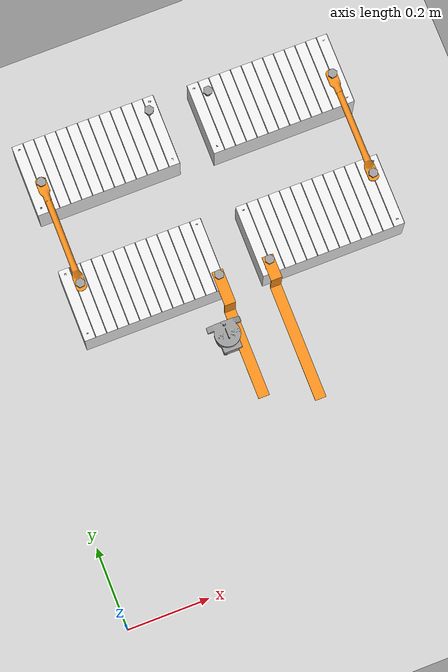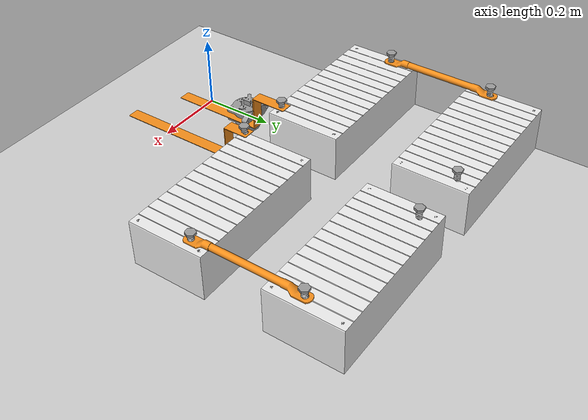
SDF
<sdf version="1.6">
 <world name="Pack6">
  <model name="ground_plane">
   <static>1</static>
   <link name="link">
    <collision name="collision">
     <geometry><plane><normal>0 0 1</normal><size>100 100</size></plane></geometry>
     <surface><friction><ode><mu>100</mu><mu2>50</mu2></ode></friction></surface>
    </collision>
    <visual name="visual">
     <cast_shadows>0</cast_shadows>
     <geometry><plane><normal>0 0 1</normal><size>100 100</size></plane></geometry>
     <material>
      <script><uri>file://media/materials/scripts/gazebo.material</uri><name>Gazebo/Grey</name></script>
     </material>
    </visual>
   </link>
  </model>
  <model name="HW_battery_module_sc_fr_half">
   <link name="link_1">
    <inertial>
     <mass>10</mass>
     <inertia><ixx>0.1275</ixx><ixy>0</ixy><ixz>0</ixz><iyy>0.3997</iyy><iyz>0</iyz><izz>0.4538</izz></inertia>
    </inertial>
    <visual name="visual">
     <geometry>
      <mesh>
       <uri>/home/wanghu26/battery_ws/src/battery_model/battery_model_stl/HW_Battery Module.stl</uri>
       <scale>0.5 0.5 0.5</scale>
      </mesh>
     </geometry>
     <material>
      <lighting>1</lighting>
      <script><uri>file://media/materials/scripts/gazebo.material</uri><name>Gazebo/White</name></script>
      <shader type="pixel"/>
     </material>
    </visual>
    <collision name="collision">
     <geometry><box><size>0.33 0.165 0.105</size></box></geometry>
     <surface>
      <friction>
       <ode><mu>1</mu><mu2>1</mu2><fdir1>0 0 0</fdir1><slip1>0</slip1><slip2>0</slip2></ode>
       <torsional>
        <coefficient>1</coefficient>
        <patch_radius>0</patch_radius>
        <surface_radius>0</surface_radius>
        <use_patch_radius>1</use_patch_radius>
        <ode><slip>0</slip></ode>
       </torsional>
      </friction>
      <bounce><restitution_coefficient>0</restitution_coefficient><threshold>1e+06</threshold></bounce>
      <contact>
       <collide_without_contact>0</collide_without_contact>
       <collide_without_contact_bitmask>1</collide_without_contact_bitmask>
       <collide_bitmask>1</collide_bitmask>
       <ode>
        <soft_cfm>0</soft_cfm>
        <soft_erp>0.2</soft_erp>
        <kp>1e+13</kp>
        <kd>1</kd>
        <max_vel>0.01</max_vel>
        <min_depth>0.0001</min_depth>
       </ode>
       <bullet>
        <split_impulse>1</split_impulse>
        <split_impulse_penetration_threshold>-0.01</split_impulse_penetration_threshold>
        <soft_cfm>0</soft_cfm>
        <soft_erp>0.2</soft_erp>
        <kp>1e+13</kp>
        <kd>1</kd>
       </bullet>
      </contact>
     </surface>
    </collision>
   </link>
   <static>1</static>
   <pose>0.299993 0.656978 0.4 0 -0 0</pose>
  </model>
  <model name="HW_battery_module_sc_fr_1_half">
   <link name="link_1">
    <inertial>
     <mass>10</mass>
     <inertia><ixx>0.1275</ixx><ixy>0</ixy><ixz>0</ixz><iyy>0.3997</iyy><iyz>0</iyz><izz>0.4538</izz></inertia>
    </inertial>
    <visual name="visual">
     <geometry>
      <mesh>
       <uri>/home/wanghu26/battery_ws/src/battery_model/battery_model_stl/HW_Battery Module.stl</uri>
       <scale>0.5 0.5 0.5</scale>
      </mesh>
     </geometry>
     <material>
      <lighting>1</lighting>
      <script><uri>file://media/materials/scripts/gazebo.material</uri><name>Gazebo/White</name></script>
      <shader type="pixel"/>
     </material>
    </visual>
    <collision name="collision">
     <geometry><box><size>0.33 0.165 0.105</size></box></geometry>
     <surface>
      <friction>
       <ode><mu>1</mu><mu2>1</mu2><fdir1>0 0 0</fdir1><slip1>0</slip1><slip2>0</slip2></ode>
       <torsional>
        <coefficient>1</coefficient>
        <patch_radius>0</patch_radius>
        <surface_radius>0</surface_radius>
        <use_patch_radius>1</use_patch_radius>
        <ode><slip>0</slip></ode>
       </torsional>
      </friction>
      <bounce><restitution_coefficient>0</restitution_coefficient><threshold>1e+06</threshold></bounce>
      <contact>
       <collide_without_contact>0</collide_without_contact>
       <collide_without_contact_bitmask>1</collide_without_contact_bitmask>
       <collide_bitmask>1</collide_bitmask>
       <ode>
        <soft_cfm>0</soft_cfm>
        <soft_erp>0.2</soft_erp>
        <kp>1e+13</kp>
        <kd>1</kd>
        <max_vel>0.01</max_vel>
        <min_depth>0.0001</min_depth>
       </ode>
       <bullet>
        <split_impulse>1</split_impulse>
        <split_impulse_penetration_threshold>-0.01</split_impulse_penetration_threshold>
        <soft_cfm>0</soft_cfm>
        <soft_erp>0.2</soft_erp>
        <kp>1e+13</kp>
        <kd>1</kd>
       </bullet>
      </contact>
     </surface>
    </collision>
   </link>
   <static>1</static>
   <pose>0.303126 0.953183 0.4 0 -0 0</pose>
  </model>
  <model name="HW_battery_module_sc_fr_2_half">
   <link name="link_1">
    <inertial>
     <mass>10</mass>
     <inertia><ixx>0.1275</ixx><ixy>0</ixy><ixz>0</ixz><iyy>0.3997</iyy><iyz>0</iyz><izz>0.4538</izz></inertia>
    </inertial>
    <visual name="visual">
     <geometry>
      <mesh>
       <uri>/home/wanghu26/battery_ws/src/battery_model/battery_model_stl/HW_Battery Module.stl</uri>
       <scale>0.5 0.5 0.5</scale>
      </mesh>
     </geometry>
     <material>
      <lighting>1</lighting>
      <script><uri>file://media/materials/scripts/gazebo.material</uri><name>Gazebo/White</name></script>
      <shader type="pixel"/>
     </material>
    </visual>
    <collision name="collision">
     <geometry><box><size>0.33 0.165 0.105</size></box></geometry>
     <surface>
      <friction>
       <ode><mu>1</mu><mu2>1</mu2><fdir1>0 0 0</fdir1><slip1>0</slip1><slip2>0</slip2></ode>
       <torsional>
        <coefficient>1</coefficient>
        <patch_radius>0</patch_radius>
        <surface_radius>0</surface_radius>
        <use_patch_radius>1</use_patch_radius>
        <ode><slip>0</slip></ode>
       </torsional>
      </friction>
      <bounce><restitution_coefficient>0</restitution_coefficient><threshold>1e+06</threshold></bounce>
      <contact>
       <collide_without_contact>0</collide_without_contact>
       <collide_without_contact_bitmask>1</collide_without_contact_bitmask>
       <collide_bitmask>1</collide_bitmask>
       <ode>
        <soft_cfm>0</soft_cfm>
        <soft_erp>0.2</soft_erp>
        <kp>1e+13</kp>
        <kd>1</kd>
        <max_vel>0.01</max_vel>
        <min_depth>0.0001</min_depth>
       </ode>
       <bullet>
        <split_impulse>1</split_impulse>
        <split_impulse_penetration_threshold>-0.01</split_impulse_penetration_threshold>
        <soft_cfm>0</soft_cfm>
        <soft_erp>0.2</soft_erp>
        <kp>1e+13</kp>
        <kd>1</kd>
       </bullet>
      </contact>
     </surface>
    </collision>
   </link>
   <static>1</static>
   <pose>0.71 0.945576 0.4 0 -0 0</pose>
  </model>
  <model name="HW_battery_module_sc_fr_3_half">
   <link name="link_1">
    <inertial>
     <mass>10</mass>
     <inertia><ixx>0.1275</ixx><ixy>0</ixy><ixz>0</ixz><iyy>0.3997</iyy><iyz>0</iyz><izz>0.4538</izz></inertia>
    </inertial>
    <visual name="visual">
     <geometry>
      <mesh>
       <uri>/home/wanghu26/battery_ws/src/battery_model/battery_model_stl/HW_Battery Module.stl</uri>
       <scale>0.5 0.5 0.5</scale>
      </mesh>
     </geometry>
     <material>
      <lighting>1</lighting>
      <script><uri>file://media/materials/scripts/gazebo.material</uri><name>Gazebo/White</name></script>
      <shader type="pixel"/>
     </material>
    </visual>
    <collision name="collision">
     <geometry><box><size>0.33 0.165 0.105</size></box></geometry>
     <surface>
      <friction>
       <ode><mu>1</mu><mu2>1</mu2><fdir1>0 0 0</fdir1><slip1>0</slip1><slip2>0</slip2></ode>
       <torsional>
        <coefficient>1</coefficient>
        <patch_radius>0</patch_radius>
        <surface_radius>0</surface_radius>
        <use_patch_radius>1</use_patch_radius>
        <ode><slip>0</slip></ode>
       </torsional>
      </friction>
      <bounce><restitution_coefficient>0</restitution_coefficient><threshold>1e+06</threshold></bounce>
      <contact>
       <collide_without_contact>0</collide_without_contact>
       <collide_without_contact_bitmask>1</collide_without_contact_bitmask>
       <collide_bitmask>1</collide_bitmask>
       <ode>
        <soft_cfm>0</soft_cfm>
        <soft_erp>0.2</soft_erp>
        <kp>1e+13</kp>
        <kd>1</kd>
        <max_vel>0.01</max_vel>
        <min_depth>0.0001</min_depth>
       </ode>
       <bullet>
        <split_impulse>1</split_impulse>
        <split_impulse_penetration_threshold>-0.01</split_impulse_penetration_threshold>
        <soft_cfm>0</soft_cfm>
        <soft_erp>0.2</soft_erp>
        <kp>1e+13</kp>
        <kd>1</kd>
       </bullet>
      </contact>
     </surface>
    </collision>
   </link>
   <static>1</static>
   <pose>0.71 0.651527 0.4 0 -0 0</pose>
  </model>
  <model name="HW_HV_cable_sc_f">
   <link name="link_1">
    <inertial>
     <mass>0.5</mass>
     <inertia><ixx>0.0017</ixx><ixy>0</ixy><ixz>0</ixz><iyy>0.00033333</iyy><iyz>0</iyz><izz>0.0017</izz></inertia>
    </inertial>
    <visual name="visual">
     <geometry>
      <mesh>
       <uri>/home/wanghu26/battery_ws/src/battery_model/battery_model_stl/HW_HV_cable .stl</uri>
       <scale>1 1 1</scale>
      </mesh>
     </geometry>
     <material>
      <lighting>1</lighting>
      <script><uri>file://media/materials/scripts/gazebo.material</uri><name>Gazebo/Orange</name></script>
      <shader type="pixel"/>
     </material>
    </visual>
    <collision name="collision">
     <pose>0.2 0 0 0 -0 0</pose>
     <geometry><box><size>0.02 0.15 0.02</size></box></geometry>
     <surface>
      <friction>
       <ode><mu>1</mu><mu2>1</mu2><fdir1>0 0 0</fdir1><slip1>0</slip1><slip2>0</slip2></ode>
       <torsional>
        <coefficient>1</coefficient>
        <patch_radius>0</patch_radius>
        <surface_radius>0</surface_radius>
        <use_patch_radius>1</use_patch_radius>
        <ode><slip>0</slip></ode>
       </torsional>
      </friction>
      <bounce><restitution_coefficient>0</restitution_coefficient><threshold>1e+06</threshold></bounce>
      <contact>
       <collide_without_contact>0</collide_without_contact>
       <collide_without_contact_bitmask>1</collide_without_contact_bitmask>
       <collide_bitmask>1</collide_bitmask>
       <ode>
        <soft_cfm>0</soft_cfm>
        <soft_erp>0.2</soft_erp>
        <kp>1e+13</kp>
        <kd>1</kd>
        <max_vel>0.01</max_vel>
        <min_depth>0</min_depth>
       </ode>
       <bullet>
        <split_impulse>1</split_impulse>
        <split_impulse_penetration_threshold>-0.01</split_impulse_penetration_threshold>
        <soft_cfm>0</soft_cfm>
        <soft_erp>0.2</soft_erp>
        <kp>1e+13</kp>
        <kd>1</kd>
       </bullet>
      </contact>
     </surface>
    </collision>
   </link>
   <static>1</static>
   <plugin name="groun_truth" filename="libgazebo_ros_p3d.so">
    <frameName>map</frameName>
    <bodyName>link_1</bodyName>
    <topicName>odom0a</topicName>
    <updateRate>30.0</updateRate>
   </plugin>
   <pose>0.17 0.811992 0.47 0 -0 0</pose>
  </model>
  <model name="HW_HV_cable_sc_f_1">
   <link name="link_1">
    <inertial>
     <mass>0.5</mass>
     <inertia><ixx>0.0017</ixx><ixy>0</ixy><ixz>0</ixz><iyy>0.00033333</iyy><iyz>0</iyz><izz>0.0017</izz></inertia>
    </inertial>
    <visual name="visual">
     <geometry>
      <mesh>
       <uri>/home/wanghu26/battery_ws/src/battery_model/battery_model_stl/HW_HV_cable .stl</uri>
       <scale>1 1 1</scale>
      </mesh>
     </geometry>
     <material>
      <lighting>1</lighting>
      <script><uri>file://media/materials/scripts/gazebo.material</uri><name>Gazebo/Orange</name></script>
      <shader type="pixel"/>
     </material>
    </visual>
    <collision name="collision">
     <pose>0.1 0 0 0 -0 0</pose>
     <geometry><box><size>0.02 0.2 0.02</size></box></geometry>
     <surface>
      <friction>
       <ode><mu>1</mu><mu2>1</mu2><fdir1>0 0 0</fdir1><slip1>0</slip1><slip2>0</slip2></ode>
       <torsional>
        <coefficient>1</coefficient>
        <patch_radius>0</patch_radius>
        <surface_radius>0</surface_radius>
        <use_patch_radius>1</use_patch_radius>
        <ode><slip>0</slip></ode>
       </torsional>
      </friction>
      <bounce><restitution_coefficient>0</restitution_coefficient><threshold>1e+06</threshold></bounce>
      <contact>
       <collide_without_contact>0</collide_without_contact>
       <collide_without_contact_bitmask>1</collide_without_contact_bitmask>
       <collide_bitmask>1</collide_bitmask>
       <ode>
        <soft_cfm>0</soft_cfm>
        <soft_erp>0.2</soft_erp>
        <kp>1e+13</kp>
        <kd>1</kd>
        <max_vel>0.01</max_vel>
        <min_depth>0</min_depth>
       </ode>
       <bullet>
        <split_impulse>1</split_impulse>
        <split_impulse_penetration_threshold>-0.01</split_impulse_penetration_threshold>
        <soft_cfm>0</soft_cfm>
        <soft_erp>0.2</soft_erp>
        <kp>1e+13</kp>
        <kd>1</kd>
       </bullet>
      </contact>
     </surface>
    </collision>
   </link>
   <static>1</static>
   <plugin name="groun_truth" filename="libgazebo_ros_p3d.so">
    <frameName>map</frameName>
    <bodyName>link_1</bodyName>
    <topicName>odom1a</topicName>
    <updateRate>30.0</updateRate>
   </plugin>
   <pose>0.85 0.814118 0.458817 0 -0 0</pose>
  </model>
  <model name="HW_tap_bolt_sc_f_0">
   <link name="link_2">
    <inertial>
     <mass>1</mass>
     <inertia>
      <ixx>0.0166667</ixx>
      <ixy>0</ixy>
      <ixz>0</ixz>
      <iyy>0.0166667</iyy>
      <iyz>0</iyz>
      <izz>0.0166667</izz>
     </inertia>
    </inertial>
    <pose>0 0 -1e-06 3.14159 -0.002979 3.14159</pose>
    <visual name="visual">
     <geometry>
      <mesh>
       <uri>/home/wanghu26/battery_ws/src/battery_model/battery_model_stl/HW_hex_bolt_tap_thread.stl</uri>
       <scale>1 1 1</scale>
      </mesh>
     </geometry>
     <material>
      <lighting>1</lighting>
      <script><uri>file://media/materials/scripts/gazebo.material</uri><name>Gazebo/Grey</name></script>
      <shader type="pixel"/>
     </material>
    </visual>
    <collision name="collision">
     <pose>0 -0.1 0 0 -0 0</pose>
     <geometry><box><size>0.02 0.02 0.04</size></box></geometry>
     <surface>
      <friction>
       <ode><mu>1</mu><mu2>1</mu2><fdir1>0 0 0</fdir1><slip1>0</slip1><slip2>0</slip2></ode>
       <torsional>
        <coefficient>1</coefficient>
        <patch_radius>0.1</patch_radius>
        <surface_radius>0.1</surface_radius>
        <use_patch_radius>1</use_patch_radius>
        <ode><slip>0</slip></ode>
       </torsional>
      </friction>
      <bounce><restitution_coefficient>0</restitution_coefficient><threshold>1e+06</threshold></bounce>
      <contact>
       <collide_without_contact>0</collide_without_contact>
       <collide_without_contact_bitmask>1</collide_without_contact_bitmask>
       <collide_bitmask>1</collide_bitmask>
       <ode>
        <soft_cfm>0</soft_cfm>
        <soft_erp>0.2</soft_erp>
        <kp>1e+13</kp>
        <kd>1</kd>
        <max_vel>0.01</max_vel>
        <min_depth>0</min_depth>
       </ode>
       <bullet>
        <split_impulse>1</split_impulse>
        <split_impulse_penetration_threshold>-0.01</split_impulse_penetration_threshold>
        <soft_cfm>0</soft_cfm>
        <soft_erp>0.2</soft_erp>
        <kp>1e+13</kp>
        <kd>1</kd>
       </bullet>
      </contact>
     </surface>
    </collision>
   </link>
   <static>1</static>
   <pose>0.454463 0.600151 0.47 0 -0 0</pose>
  </model>
  <model name="HW_tap_bolt_sc_f_1">
   <link name="link_2">
    <inertial>
     <mass>1</mass>
     <inertia>
      <ixx>0.0166667</ixx>
      <ixy>0</ixy>
      <ixz>0</ixz>
      <iyy>0.0166667</iyy>
      <iyz>0</iyz>
      <izz>0.0166667</izz>
     </inertia>
    </inertial>
    <pose>0 0 -1e-06 3.14159 -0.002979 3.14159</pose>
    <visual name="visual">
     <geometry>
      <mesh>
       <uri>/home/wanghu26/battery_ws/src/battery_model/battery_model_stl/HW_hex_bolt_tap_thread.stl</uri>
       <scale>1 1 1</scale>
      </mesh>
     </geometry>
     <material>
      <lighting>1</lighting>
      <script><uri>file://media/materials/scripts/gazebo.material</uri><name>Gazebo/Grey</name></script>
      <shader type="pixel"/>
     </material>
    </visual>
    <collision name="collision">
     <pose>0 0.1 0 0 -0 0</pose>
     <geometry><box><size>0.02 0.02 0.04</size></box></geometry>
     <surface>
      <friction>
       <ode><mu>1</mu><mu2>1</mu2><fdir1>0 0 0</fdir1><slip1>0</slip1><slip2>0</slip2></ode>
       <torsional>
        <coefficient>1</coefficient>
        <patch_radius>0.1</patch_radius>
        <surface_radius>0.1</surface_radius>
        <use_patch_radius>1</use_patch_radius>
        <ode><slip>0</slip></ode>
       </torsional>
      </friction>
      <bounce><restitution_coefficient>0</restitution_coefficient><threshold>1e+06</threshold></bounce>
      <contact>
       <collide_without_contact>0</collide_without_contact>
       <collide_without_contact_bitmask>1</collide_without_contact_bitmask>
       <collide_bitmask>1</collide_bitmask>
       <ode>
        <soft_cfm>0</soft_cfm>
        <soft_erp>0.2</soft_erp>
        <kp>1e+13</kp>
        <kd>1</kd>
        <max_vel>0.01</max_vel>
        <min_depth>0</min_depth>
       </ode>
       <bullet>
        <split_impulse>1</split_impulse>
        <split_impulse_penetration_threshold>-0.01</split_impulse_penetration_threshold>
        <soft_cfm>0</soft_cfm>
        <soft_erp>0.2</soft_erp>
        <kp>1e+13</kp>
        <kd>1</kd>
       </bullet>
      </contact>
     </surface>
    </collision>
   </link>
   <static>1</static>
   <pose>0.17 0.690805 0.47 0 -0 0</pose>
  </model>
  <model name="HW_tap_bolt_sc_f_2">
   <link name="link_2">
    <inertial>
     <mass>1</mass>
     <inertia>
      <ixx>0.0166667</ixx>
      <ixy>0</ixy>
      <ixz>0</ixz>
      <iyy>0.0166667</iyy>
      <iyz>0</iyz>
      <izz>0.0166667</izz>
     </inertia>
    </inertial>
    <pose>0 0 -1e-06 3.14159 -0.002979 3.14159</pose>
    <visual name="visual">
     <geometry>
      <mesh>
       <uri>/home/wanghu26/battery_ws/src/battery_model/battery_model_stl/HW_hex_bolt_tap_thread.stl</uri>
       <scale>1 1 1</scale>
      </mesh>
     </geometry>
     <material>
      <lighting>1</lighting>
      <script><uri>file://media/materials/scripts/gazebo.material</uri><name>Gazebo/Grey</name></script>
      <shader type="pixel"/>
     </material>
    </visual>
    <collision name="collision">
     <pose>0 0.1 0 0 -0 0</pose>
     <geometry><box><size>0.02 0.02 0.04</size></box></geometry>
     <surface>
      <friction>
       <ode><mu>1</mu><mu2>1</mu2><fdir1>0 0 0</fdir1><slip1>0</slip1><slip2>0</slip2></ode>
       <torsional>
        <coefficient>1</coefficient>
        <patch_radius>0.1</patch_radius>
        <surface_radius>0.1</surface_radius>
        <use_patch_radius>1</use_patch_radius>
        <ode><slip>0</slip></ode>
       </torsional>
      </friction>
      <bounce><restitution_coefficient>0</restitution_coefficient><threshold>1e+06</threshold></bounce>
      <contact>
       <collide_without_contact>0</collide_without_contact>
       <collide_without_contact_bitmask>1</collide_without_contact_bitmask>
       <collide_bitmask>1</collide_bitmask>
       <ode>
        <soft_cfm>0</soft_cfm>
        <soft_erp>0.2</soft_erp>
        <kp>1e+13</kp>
        <kd>1</kd>
        <max_vel>0.01</max_vel>
        <min_depth>0</min_depth>
       </ode>
       <bullet>
        <split_impulse>1</split_impulse>
        <split_impulse_penetration_threshold>-0.01</split_impulse_penetration_threshold>
        <soft_cfm>0</soft_cfm>
        <soft_erp>0.2</soft_erp>
        <kp>1e+13</kp>
        <kd>1</kd>
       </bullet>
      </contact>
     </surface>
    </collision>
   </link>
   <static>1</static>
   <pose>0.17 0.930276 0.47 0 -0 0</pose>
  </model>
  <model name="HW_tap_bolt_sc_f_3">
   <link name="link_2">
    <inertial>
     <mass>1</mass>
     <inertia>
      <ixx>0.0166667</ixx>
      <ixy>0</ixy>
      <ixz>0</ixz>
      <iyy>0.0166667</iyy>
      <iyz>0</iyz>
      <izz>0.0166667</izz>
     </inertia>
    </inertial>
    <pose>0 0 -1e-06 3.14159 -0.002979 3.14159</pose>
    <visual name="visual">
     <geometry>
      <mesh>
       <uri>/home/wanghu26/battery_ws/src/battery_model/battery_model_stl/HW_hex_bolt_tap_thread.stl</uri>
       <scale>1 1 1</scale>
      </mesh>
     </geometry>
     <material>
      <lighting>1</lighting>
      <script><uri>file://media/materials/scripts/gazebo.material</uri><name>Gazebo/Grey</name></script>
      <shader type="pixel"/>
     </material>
    </visual>
    <collision name="collision">
     <pose>0 0.1 0 0 -0 0</pose>
     <geometry><box><size>0.02 0.02 0.04</size></box></geometry>
     <surface>
      <friction>
       <ode><mu>1</mu><mu2>1</mu2><fdir1>0 0 0</fdir1><slip1>0</slip1><slip2>0</slip2></ode>
       <torsional>
        <coefficient>1</coefficient>
        <patch_radius>0.1</patch_radius>
        <surface_radius>0.1</surface_radius>
        <use_patch_radius>1</use_patch_radius>
        <ode><slip>0</slip></ode>
       </torsional>
      </friction>
      <bounce><restitution_coefficient>0</restitution_coefficient><threshold>1e+06</threshold></bounce>
      <contact>
       <collide_without_contact>0</collide_without_contact>
       <collide_without_contact_bitmask>1</collide_without_contact_bitmask>
       <collide_bitmask>1</collide_bitmask>
       <ode>
        <soft_cfm>0</soft_cfm>
        <soft_erp>0.2</soft_erp>
        <kp>1e+13</kp>
        <kd>1</kd>
        <max_vel>0.01</max_vel>
        <min_depth>0</min_depth>
       </ode>
       <bullet>
        <split_impulse>1</split_impulse>
        <split_impulse_penetration_threshold>-0.01</split_impulse_penetration_threshold>
        <soft_cfm>0</soft_cfm>
        <soft_erp>0.2</soft_erp>
        <kp>1e+13</kp>
        <kd>1</kd>
       </bullet>
      </contact>
     </surface>
    </collision>
   </link>
   <static>1</static>
   <pose>0.85 0.933431 0.455628 0 -0 0</pose>
  </model>
  <model name="HW_tap_bolt_sc_f_4">
   <link name="link_2">
    <inertial>
     <mass>1</mass>
     <inertia>
      <ixx>0.0166667</ixx>
      <ixy>0</ixy>
      <ixz>0</ixz>
      <iyy>0.0166667</iyy>
      <iyz>0</iyz>
      <izz>0.0166667</izz>
     </inertia>
    </inertial>
    <pose>0 0 -1e-06 3.14159 -0.002979 3.14159</pose>
    <visual name="visual">
     <geometry>
      <mesh>
       <uri>/home/wanghu26/battery_ws/src/battery_model/battery_model_stl/HW_hex_bolt_tap_thread.stl</uri>
       <scale>1 1 1</scale>
      </mesh>
     </geometry>
     <material>
      <lighting>1</lighting>
      <script><uri>file://media/materials/scripts/gazebo.material</uri><name>Gazebo/Grey</name></script>
      <shader type="pixel"/>
     </material>
    </visual>
    <collision name="collision">
     <pose>0 0.1 0 0 -0 0</pose>
     <geometry><box><size>0.02 0.02 0.04</size></box></geometry>
     <surface>
      <friction>
       <ode><mu>1</mu><mu2>1</mu2><fdir1>0 0 0</fdir1><slip1>0</slip1><slip2>0</slip2></ode>
       <torsional>
        <coefficient>1</coefficient>
        <patch_radius>0.1</patch_radius>
        <surface_radius>0.1</surface_radius>
        <use_patch_radius>1</use_patch_radius>
        <ode><slip>0</slip></ode>
       </torsional>
      </friction>
      <bounce><restitution_coefficient>0</restitution_coefficient><threshold>1e+06</threshold></bounce>
      <contact>
       <collide_without_contact>0</collide_without_contact>
       <collide_without_contact_bitmask>1</collide_without_contact_bitmask>
       <collide_bitmask>1</collide_bitmask>
       <ode>
        <soft_cfm>0</soft_cfm>
        <soft_erp>0.2</soft_erp>
        <kp>1e+13</kp>
        <kd>1</kd>
        <max_vel>0.01</max_vel>
        <min_depth>0</min_depth>
       </ode>
       <bullet>
        <split_impulse>1</split_impulse>
        <split_impulse_penetration_threshold>-0.01</split_impulse_penetration_threshold>
        <soft_cfm>0</soft_cfm>
        <soft_erp>0.2</soft_erp>
        <kp>1e+13</kp>
        <kd>1</kd>
       </bullet>
      </contact>
     </surface>
    </collision>
   </link>
   <static>1</static>
   <pose>0.85 0.69367 0.453535 0 -0 0</pose>
  </model>
  <model name="HW_tap_bolt_sc_f_5">
   <link name="link_2">
    <inertial>
     <mass>1</mass>
     <inertia>
      <ixx>0.0166667</ixx>
      <ixy>0</ixy>
      <ixz>0</ixz>
      <iyy>0.0166667</iyy>
      <iyz>0</iyz>
      <izz>0.0166667</izz>
     </inertia>
    </inertial>
    <pose>0 0 -1e-06 3.14159 -0.002979 3.14159</pose>
    <visual name="visual">
     <geometry>
      <mesh>
       <uri>/home/wanghu26/battery_ws/src/battery_model/battery_model_stl/HW_hex_bolt_tap_thread.stl</uri>
       <scale>1 1 1</scale>
      </mesh>
     </geometry>
     <material>
      <lighting>1</lighting>
      <script><uri>file://media/materials/scripts/gazebo.material</uri><name>Gazebo/Grey</name></script>
      <shader type="pixel"/>
     </material>
    </visual>
    <collision name="collision">
     <pose>0 -0.1 0 0 -0 0</pose>
     <geometry><box><size>0.02 0.02 0.04</size></box></geometry>
     <surface>
      <friction>
       <ode><mu>1</mu><mu2>1</mu2><fdir1>0 0 0</fdir1><slip1>0</slip1><slip2>0</slip2></ode>
       <torsional>
        <coefficient>1</coefficient>
        <patch_radius>0.1</patch_radius>
        <surface_radius>0.1</surface_radius>
        <use_patch_radius>1</use_patch_radius>
        <ode><slip>0</slip></ode>
       </torsional>
      </friction>
      <bounce><restitution_coefficient>0</restitution_coefficient><threshold>1e+06</threshold></bounce>
      <contact>
       <collide_without_contact>0</collide_without_contact>
       <collide_without_contact_bitmask>1</collide_without_contact_bitmask>
       <collide_bitmask>1</collide_bitmask>
       <ode>
        <soft_cfm>0</soft_cfm>
        <soft_erp>0.2</soft_erp>
        <kp>1e+13</kp>
        <kd>1</kd>
        <max_vel>0.01</max_vel>
        <min_depth>0</min_depth>
       </ode>
       <bullet>
        <split_impulse>1</split_impulse>
        <split_impulse_penetration_threshold>-0.01</split_impulse_penetration_threshold>
        <soft_cfm>0</soft_cfm>
        <soft_erp>0.2</soft_erp>
        <kp>1e+13</kp>
        <kd>1</kd>
       </bullet>
      </contact>
     </surface>
    </collision>
   </link>
   <static>1</static>
   <pose>0.568 0.592208 0.47 0 -0 0</pose>
  </model>
  <model name="Contactor">
   <link name="link_1">
    <pose>0 -0 -0 1.60329 -0 0</pose>
    <inertial>
     <mass>1</mass>
     <inertia>
      <ixx>0.166667</ixx>
      <ixy>0</ixy>
      <ixz>0</ixz>
      <iyy>0.166667</iyy>
      <iyz>0</iyz>
      <izz>0.166667</izz>
     </inertia>
    </inertial>
    <visual name="visual">
     <geometry>
      <mesh>
       <uri>/home/wanghu26/battery_ws/src/battery_model/battery_model_stl/HW_Tyco KiloVac EV200 Contactor Side Mount.stl</uri>
       <scale>1 1 1</scale>
      </mesh>
     </geometry>
     <material>
      <lighting>1</lighting>
      <script><uri>file://media/materials/scripts/gazebo.material</uri><name>Gazebo/Grey</name></script>
     </material>
    </visual>
    <collision name="collision">
     <geometry>
      <mesh>
       <uri>/home/wanghu26/battery_ws/src/battery_model/battery_model_stl/HW_Tyco KiloVac EV200 Contactor Side Mount.stl</uri>
      </mesh>
     </geometry>
     <surface>
      <friction>
       <ode><mu>1</mu><mu2>1</mu2><fdir1>0 0 0</fdir1><slip1>0</slip1><slip2>0</slip2></ode>
       <torsional>
        <coefficient>1</coefficient>
        <patch_radius>0</patch_radius>
        <surface_radius>0</surface_radius>
        <use_patch_radius>1</use_patch_radius>
        <ode><slip>0</slip></ode>
       </torsional>
      </friction>
      <bounce><restitution_coefficient>0</restitution_coefficient><threshold>1e+06</threshold></bounce>
      <contact>
       <collide_without_contact>0</collide_without_contact>
       <collide_without_contact_bitmask>1</collide_without_contact_bitmask>
       <collide_bitmask>1</collide_bitmask>
       <ode>
        <soft_cfm>0</soft_cfm>
        <soft_erp>0.2</soft_erp>
        <kp>1e+13</kp>
        <kd>1</kd>
        <max_vel>0.01</max_vel>
        <min_depth>0</min_depth>
       </ode>
       <bullet>
        <split_impulse>1</split_impulse>
        <split_impulse_penetration_threshold>-0.01</split_impulse_penetration_threshold>
        <soft_cfm>0</soft_cfm>
        <soft_erp>0.2</soft_erp>
        <kp>1e+13</kp>
        <kd>1</kd>
       </bullet>
      </contact>
     </surface>
    </collision>
   </link>
   <static>1</static>
   <pose>0.443 0.489128 0.4 0 -0 0</pose>
  </model>
  <model name="bus_neg">
   <link name="link_3">
    <pose>-0 0 -0 1.57326 -0 0</pose>
    <inertial>
     <mass>1</mass>
     <inertia>
      <ixx>0.166667</ixx>
      <ixy>0</ixy>
      <ixz>0</ixz>
      <iyy>0.166667</iyy>
      <iyz>0</iyz>
      <izz>0.166667</izz>
     </inertia>
    </inertial>
    <visual name="visual">
     <geometry>
      <mesh>
       <uri>/home/wanghu26/battery_ws/src/battery_model/battery_model_stl/HW_bus_bar_neg.stl</uri>
       <scale>1 0.5 0.7</scale>
      </mesh>
     </geometry>
     <material>
      <lighting>1</lighting>
      <script><uri>file://media/materials/scripts/gazebo.material</uri><name>Gazebo/Orange</name></script>
     </material>
    </visual>
    <collision name="collision">
     <pose>0 0 0.1 0 -0 0</pose>
     <geometry>
      <mesh><uri>/home/wanghu26/battery_ws/src/battery_model/battery_model_stl/HW_bus_bar_neg.stl</uri></mesh>
     </geometry>
     <surface>
      <friction>
       <ode><mu>1</mu><mu2>1</mu2><fdir1>0 0 0</fdir1><slip1>0</slip1><slip2>0</slip2></ode>
       <torsional>
        <coefficient>1</coefficient>
        <patch_radius>0</patch_radius>
        <surface_radius>0</surface_radius>
        <use_patch_radius>1</use_patch_radius>
        <ode><slip>0</slip></ode>
       </torsional>
      </friction>
      <bounce><restitution_coefficient>0</restitution_coefficient><threshold>1e+06</threshold></bounce>
      <contact>
       <collide_without_contact>0</collide_without_contact>
       <collide_without_contact_bitmask>1</collide_without_contact_bitmask>
       <collide_bitmask>1</collide_bitmask>
       <ode>
        <soft_cfm>0</soft_cfm>
        <soft_erp>0.2</soft_erp>
        <kp>1e+13</kp>
        <kd>1</kd>
        <max_vel>0.01</max_vel>
        <min_depth>0</min_depth>
       </ode>
       <bullet>
        <split_impulse>1</split_impulse>
        <split_impulse_penetration_threshold>-0.01</split_impulse_penetration_threshold>
        <soft_cfm>0</soft_cfm>
        <soft_erp>0.2</soft_erp>
        <kp>1e+13</kp>
        <kd>1</kd>
       </bullet>
      </contact>
     </surface>
    </collision>
   </link>
   <static>1</static>
   <pose>0.555 0.604483 0.47 0 -0 0</pose>
  </model>
  <model name="bus_pos">
   <link name="link_5">
    <pose>0 0 -0 1.56922 -0 0</pose>
    <inertial>
     <mass>1</mass>
     <inertia>
      <ixx>0.166667</ixx>
      <ixy>0</ixy>
      <ixz>0</ixz>
      <iyy>0.166667</iyy>
      <iyz>0</iyz>
      <izz>0.166667</izz>
     </inertia>
    </inertial>
    <visual name="visual">
     <geometry>
      <mesh>
       <uri>/home/wanghu26/battery_ws/src/battery_model/battery_model_stl/HW_bus_bar_pos.stl</uri>
       <scale>1 0.5 1</scale>
      </mesh>
     </geometry>
     <material>
      <lighting>1</lighting>
      <script><uri>file://media/materials/scripts/gazebo.material</uri><name>Gazebo/Orange</name></script>
     </material>
    </visual>
    <collision name="collision">
     <pose>0 0 0.1 0 -0 0</pose>
     <geometry>
      <mesh><uri>/home/wanghu26/battery_ws/src/battery_model/battery_model_stl/HW_bus_bar_pos.stl</uri></mesh>
     </geometry>
     <surface>
      <friction>
       <ode><mu>1</mu><mu2>1</mu2><fdir1>0 0 0</fdir1><slip1>0</slip1><slip2>0</slip2></ode>
       <torsional>
        <coefficient>1</coefficient>
        <patch_radius>0</patch_radius>
        <surface_radius>0</surface_radius>
        <use_patch_radius>1</use_patch_radius>
        <ode><slip>0</slip></ode>
       </torsional>
      </friction>
      <bounce><restitution_coefficient>0</restitution_coefficient><threshold>1e+06</threshold></bounce>
      <contact>
       <collide_without_contact>0</collide_without_contact>
       <collide_without_contact_bitmask>1</collide_without_contact_bitmask>
       <collide_bitmask>1</collide_bitmask>
       <ode>
        <soft_cfm>0</soft_cfm>
        <soft_erp>0.2</soft_erp>
        <kp>1e+13</kp>
        <kd>1</kd>
        <max_vel>0.01</max_vel>
        <min_depth>0</min_depth>
       </ode>
       <bullet>
        <split_impulse>1</split_impulse>
        <split_impulse_penetration_threshold>-0.01</split_impulse_penetration_threshold>
        <soft_cfm>0</soft_cfm>
        <soft_erp>0.2</soft_erp>
        <kp>1e+13</kp>
        <kd>1</kd>
       </bullet>
      </contact>
     </surface>
    </collision>
   </link>
   <static>1</static>
   <pose>0.442 0.612866 0.47 0 -0 0</pose>
  </model>
  <model name="HW_tap_bolt_sc_f_2_clone">
   <link name="link_2">
    <inertial>
     <mass>1</mass>
     <inertia>
      <ixx>0.0166667</ixx>
      <ixy>0</ixy>
      <ixz>0</ixz>
      <iyy>0.0166667</iyy>
      <iyz>0</iyz>
      <izz>0.0166667</izz>
     </inertia>
    </inertial>
    <pose>0 0 -1e-06 3.14159 -0.002979 3.14159</pose>
    <visual name="visual">
     <geometry>
      <mesh>
       <uri>/home/wanghu26/battery_ws/src/battery_model/battery_model_stl/HW_hex_bolt_tap_thread.stl</uri>
       <scale>1 1 1</scale>
      </mesh>
     </geometry>
     <material>
      <lighting>1</lighting>
      <script><uri>file://media/materials/scripts/gazebo.material</uri><name>Gazebo/Grey</name></script>
      <shader type="pixel"/>
     </material>
    </visual>
    <collision name="collision">
     <pose>0 0.1 0 0 -0 0</pose>
     <geometry><box><size>0.02 0.02 0.04</size></box></geometry>
     <surface>
      <friction>
       <ode><mu>1</mu><mu2>1</mu2><fdir1>0 0 0</fdir1><slip1>0</slip1><slip2>0</slip2></ode>
       <torsional>
        <coefficient>1</coefficient>
        <patch_radius>0.1</patch_radius>
        <surface_radius>0.1</surface_radius>
        <use_patch_radius>1</use_patch_radius>
        <ode><slip>0</slip></ode>
       </torsional>
      </friction>
      <bounce><restitution_coefficient>0</restitution_coefficient><threshold>1e+06</threshold></bounce>
      <contact>
       <collide_without_contact>0</collide_without_contact>
       <collide_without_contact_bitmask>1</collide_without_contact_bitmask>
       <collide_bitmask>1</collide_bitmask>
       <ode>
        <soft_cfm>0</soft_cfm>
        <soft_erp>0.2</soft_erp>
        <kp>1e+13</kp>
        <kd>1</kd>
        <max_vel>0.01</max_vel>
        <min_depth>0</min_depth>
       </ode>
       <bullet>
        <split_impulse>1</split_impulse>
        <split_impulse_penetration_threshold>-0.01</split_impulse_penetration_threshold>
        <soft_cfm>0</soft_cfm>
        <soft_erp>0.2</soft_erp>
        <kp>1e+13</kp>
        <kd>1</kd>
       </bullet>
      </contact>
     </surface>
    </collision>
   </link>
   <static>1</static>
   <pose>0.445525 0.998654 0.461395 0 -0 0</pose>
  </model>
  <model name="HW_tap_bolt_sc_f_2_clone_0">
   <link name="link_2">
    <inertial>
     <mass>1</mass>
     <inertia>
      <ixx>0.0166667</ixx>
      <ixy>0</ixy>
      <ixz>0</ixz>
      <iyy>0.0166667</iyy>
      <iyz>0</iyz>
      <izz>0.0166667</izz>
     </inertia>
    </inertial>
    <pose>0 0 -1e-06 3.14159 -0.002979 3.14159</pose>
    <visual name="visual">
     <geometry>
      <mesh>
       <uri>/home/wanghu26/battery_ws/src/battery_model/battery_model_stl/HW_hex_bolt_tap_thread.stl</uri>
       <scale>1 1 1</scale>
      </mesh>
     </geometry>
     <material>
      <lighting>1</lighting>
      <script><uri>file://media/materials/scripts/gazebo.material</uri><name>Gazebo/Grey</name></script>
      <shader type="pixel"/>
     </material>
    </visual>
    <collision name="collision">
     <pose>0 0.1 0 0 -0 0</pose>
     <geometry><box><size>0.02 0.02 0.04</size></box></geometry>
     <surface>
      <friction>
       <ode><mu>1</mu><mu2>1</mu2><fdir1>0 0 0</fdir1><slip1>0</slip1><slip2>0</slip2></ode>
       <torsional>
        <coefficient>1</coefficient>
        <patch_radius>0.1</patch_radius>
        <surface_radius>0.1</surface_radius>
        <use_patch_radius>1</use_patch_radius>
        <ode><slip>0</slip></ode>
       </torsional>
      </friction>
      <bounce><restitution_coefficient>0</restitution_coefficient><threshold>1e+06</threshold></bounce>
      <contact>
       <collide_without_contact>0</collide_without_contact>
       <collide_without_contact_bitmask>1</collide_without_contact_bitmask>
       <collide_bitmask>1</collide_bitmask>
       <ode>
        <soft_cfm>0</soft_cfm>
        <soft_erp>0.2</soft_erp>
        <kp>1e+13</kp>
        <kd>1</kd>
        <max_vel>0.01</max_vel>
        <min_depth>0</min_depth>
       </ode>
       <bullet>
        <split_impulse>1</split_impulse>
        <split_impulse_penetration_threshold>-0.01</split_impulse_penetration_threshold>
        <soft_cfm>0</soft_cfm>
        <soft_erp>0.2</soft_erp>
        <kp>1e+13</kp>
        <kd>1</kd>
       </bullet>
      </contact>
     </surface>
    </collision>
   </link>
   <static>1</static>
   <pose>0.580861 0.993372 0.462682 0 -0 0</pose>
  </model>
 </world>
</sdf>
